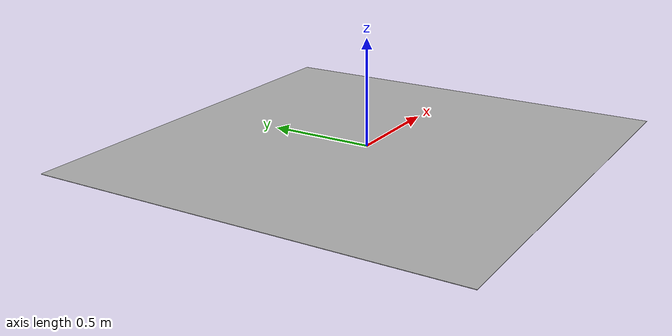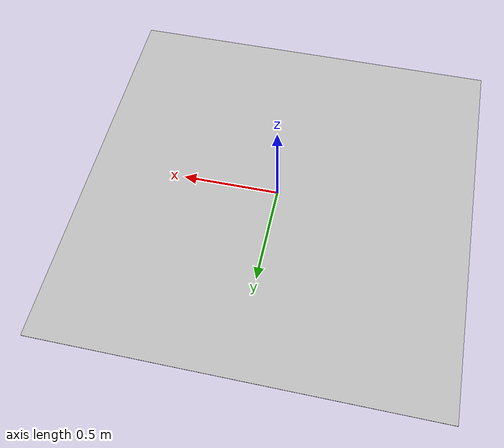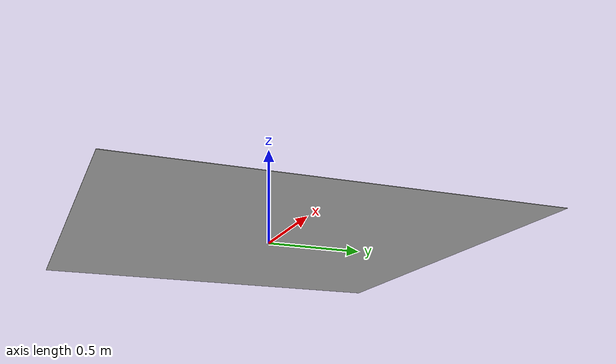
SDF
<?xml version="1.0"?>
<sdf version="1.4">
    <model name="QR1">
        <static>true</static>
        <link name="link">
            <collision name="collision">
                <geometry>
                    <plane>
                        <normal>0 0 1</normal>
                        <size>2 2</size>
                    </plane>
                </geometry>
                <surface>
                    <friction>
                        <ode>
                            <mu>100.0</mu>
                            <mu2>50.0</mu2>
                            <fdir1>0 0 0</fdir1>
                            <slip1>0</slip1>
                            <slip2>0</slip2>
                        </ode>
                    </friction>
                    <bounce/>
                    <contact>
                        <ode>
                            <soft_cfm>0</soft_cfm>
                            <soft_erp>0.2</soft_erp>
                            <kp>1e10</kp>
                            <kd>1</kd>
                            <max_vel>100.0</max_vel>
                            <min_depth>0.0001</min_depth>
                        </ode>
                    </contact>
                </surface>
            </collision>

            <visual name="visual">
                <cast_shadows>0</cast_shadows>
                <geometry>
                    <plane>
                        <normal>0 0 1</normal>
                        <size>2 2</size>
                    </plane>
                </geometry>
                <material>
                    <script>
                        <uri>file://media/materials/scripts/iarc.material</uri>
                        <name>IARC/QR1</name>
                    </script>
                </material>
            </visual>
        </link>
    </model>

    <model name="QR2">
        <static>true</static>
        <link name="link">
            <collision name="collision">
                <geometry>
                    <plane>
                        <normal>0 0 1</normal>
                        <size>2 2</size>
                    </plane>
                </geometry>
                <surface>
                    <friction>
                        <ode>
                            <mu>100.0</mu>
                            <mu2>50.0</mu2>
                            <fdir1>0 0 0</fdir1>
                            <slip1>0</slip1>
                            <slip2>0</slip2>
                        </ode>
                    </friction>
                    <bounce/>
                    <contact>
                        <ode>
                            <soft_cfm>0</soft_cfm>
                            <soft_erp>0.2</soft_erp>
                            <kp>1e10</kp>
                            <kd>1</kd>
                            <max_vel>100.0</max_vel>
                            <min_depth>0.0001</min_depth>
                        </ode>
                    </contact>
                </surface>
            </collision>

            <visual name="visual">
                <cast_shadows>0</cast_shadows>
                <geometry>
                    <plane>
                        <normal>0 0 1</normal>
                        <size>2 2</size>
                    </plane>
                </geometry>
                <material>
                    <script>
                        <uri>file://media/materials/scripts/iarc.material</uri>
                        <name>IARC/QR2</name>
                    </script>
                </material>
            </visual>
        </link>
    </model>

    <model name="QR3">
        <static>true</static>
        <link name="link">
            <collision name="collision">
                <geometry>
                    <plane>
                        <normal>0 0 1</normal>
                        <size>2 2</size>
                    </plane>
                </geometry>
                <surface>
                    <friction>
                        <ode>
                            <mu>100.0</mu>
                            <mu2>50.0</mu2>
                            <fdir1>0 0 0</fdir1>
                            <slip1>0</slip1>
                            <slip2>0</slip2>
                        </ode>
                    </friction>
                    <bounce/>
                    <contact>
                        <ode>
                            <soft_cfm>0</soft_cfm>
                            <soft_erp>0.2</soft_erp>
                            <kp>1e10</kp>
                            <kd>1</kd>
                            <max_vel>100.0</max_vel>
                            <min_depth>0.0001</min_depth>
                        </ode>
                    </contact>
                </surface>
            </collision>

            <visual name="visual">
                <cast_shadows>0</cast_shadows>
                <geometry>
                    <plane>
                        <normal>0 0 1</normal>
                        <size>2 2</size>
                    </plane>
                </geometry>
                <material>
                    <script>
                        <uri>file://media/materials/scripts/iarc.material</uri>
                        <name>IARC/QR3</name>
                    </script>
                </material>
            </visual>
        </link>
    </model>

    <model name="QR4">
        <static>true</static>
        <link name="link">
            <collision name="collision">
                <geometry>
                    <plane>
                        <normal>0 0 1</normal>
                        <size>2 2</size>
                    </plane>
                </geometry>
                <surface>
                    <friction>
                        <ode>
                            <mu>100.0</mu>
                            <mu2>50.0</mu2>
                            <fdir1>0 0 0</fdir1>
                            <slip1>0</slip1>
                            <slip2>0</slip2>
                        </ode>
                    </friction>
                    <bounce/>
                    <contact>
                        <ode>
                            <soft_cfm>0</soft_cfm>
                            <soft_erp>0.2</soft_erp>
                            <kp>1e10</kp>
                            <kd>1</kd>
                            <max_vel>100.0</max_vel>
                            <min_depth>0.0001</min_depth>
                        </ode>
                    </contact>
                </surface>
            </collision>

            <visual name="visual">
                <cast_shadows>0</cast_shadows>
                <geometry>
                    <plane>
                        <normal>0 0 1</normal>
                        <size>2 2</size>
                    </plane>
                </geometry>
                <material>
                    <script>
                        <uri>file://media/materials/scripts/iarc.material</uri>
                        <name>IARC/QR4</name>
                    </script>
                </material>
            </visual>
        </link>
    </model>
</sdf>
